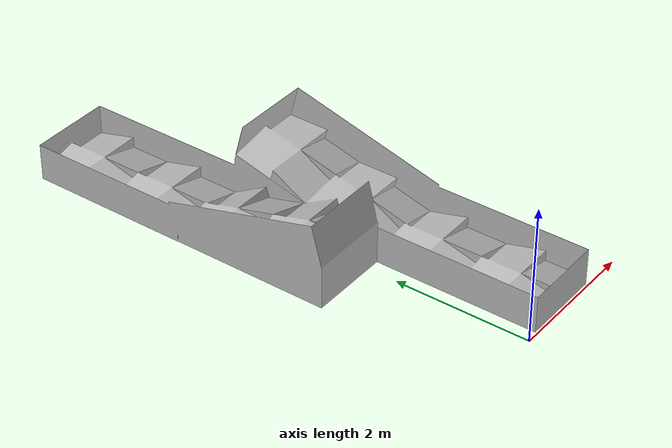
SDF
<?xml version="1.0" ?>
<sdf version="1.6">
  <model name="ramp_slope">
    <static>true</static>
    <pose>-1 0 0 1.5708 0 0</pose>
    <link name="link">
      <collision name="collision">
        <geometry>
          <mesh>
            <scale>0.01 0.01 0.01</scale>
            <uri>model://ramp_slope/ramp_slope.dae</uri>
          </mesh>
        </geometry>
        <surface>
          <friction>
            <ode>
              <mu>100</mu>
              <mu2>50</mu2>
            </ode>
          </friction>
        </surface>
      </collision>
      <visual name="visual">
        <geometry>
          <mesh>
            <scale>0.01 0.01 0.01</scale>
            <uri>model://ramp_slope/ramp_slope.dae</uri>
          </mesh>
        </geometry>
      </visual>
    </link>
  </model>
</sdf>
